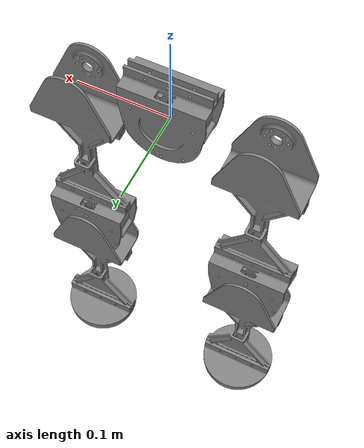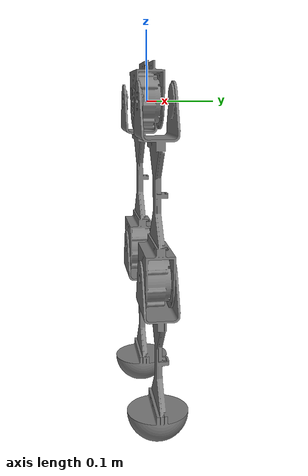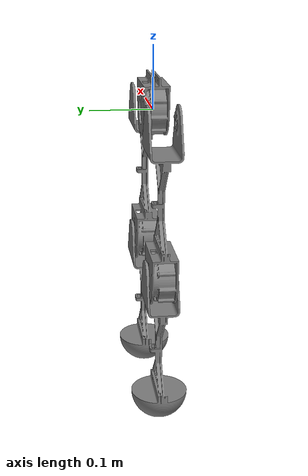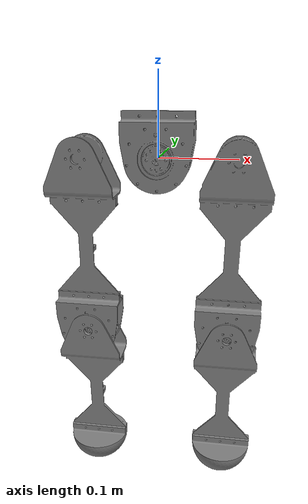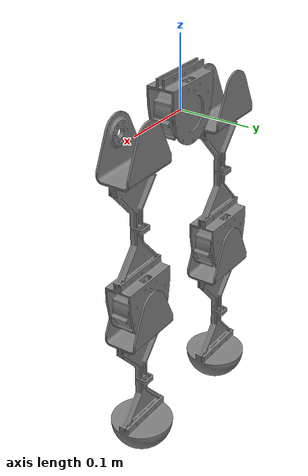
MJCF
<mujoco model="biped">
    <compiler angle="degree"/> <!-- Use degrees to define angles -->
    <option>
        <flag contact="enable"/>
    </option>
    <default>
        <mesh scale="1 1 1"/>
        <geom type="mesh" />
        <joint type="hinge" limited="true" axis="0 1 0"/>
        <position ctrllimited="true" kp="1" kv="0.1"/>
    </default>
    <asset>
        <!-- Reused assets for both legs -->
        <mesh name="Hip" file="hip_updated.stl"/>
        <mesh name="Thigh" file="thigh_updated.stl"/>
        <mesh name="Shank" file="shank_updated.stl"/>
    </asset>
    <worldbody>
        <body name="Hip">
            <geom mesh="Hip"/>
            <joint name="base_z" type="slide" axis="0 0 1" pos="0 0 0" limited="false"/>

            <!-- First leg (left) -->
            <body name="Thigh_Left" pos="0.1 0 0">
                <joint name="hip_joint_left" pos="0 0 0" axis="0 1 0" limited="true" range="-90 90"/>
                <geom mesh="Thigh"/>
                <body name="Shank_Left" pos="0 0 -0.242">
                    <joint name="knee_joint_left" axis="0 1 0" limited="true" range="-90 90"/>
                    <geom mesh="Shank"/>
                </body>
            </body>

            <!-- Second leg (right) -->
            <body name="Thigh_Right" pos="-0.1 0 0">
                <joint name="hip_joint_right" pos="0 0 0" axis="0 1 0" limited="true" range="-90 90"/>
                <geom mesh="Thigh"/>
                <body name="Shank_Right" pos="0 0 -0.242">
                    <joint name="knee_joint_right" axis="0 1 0" limited="true" range="-90 90"/>
                    <geom mesh="Shank"/>
                </body>
            </body>
        </body>
    </worldbody>

    <actuator>
        <!-- Actuators for the left leg -->
        <position name="hip_joint_left_act" joint="hip_joint_left" ctrlrange="-5 5"/>
        <position name="knee_joint_left_act" joint="knee_joint_left" ctrlrange="-5 5"/>

        <!-- Actuators for the right leg -->
        <position name="hip_joint_right_act" joint="hip_joint_right" ctrlrange="-5 5"/>
        <position name="knee_joint_right_act" joint="knee_joint_right" ctrlrange="-5 5"/>
    </actuator>

    <contact>
        <!-- Exclude collisions between connected parts -->
        <exclude body1="Hip" body2="Thigh_Left"/>
        <exclude body1="Thigh_Left" body2="Shank_Left"/>
        <exclude body1="Hip" body2="Thigh_Right"/>
        <exclude body1="Thigh_Right" body2="Shank_Right"/>
    </contact>
</mujoco>
